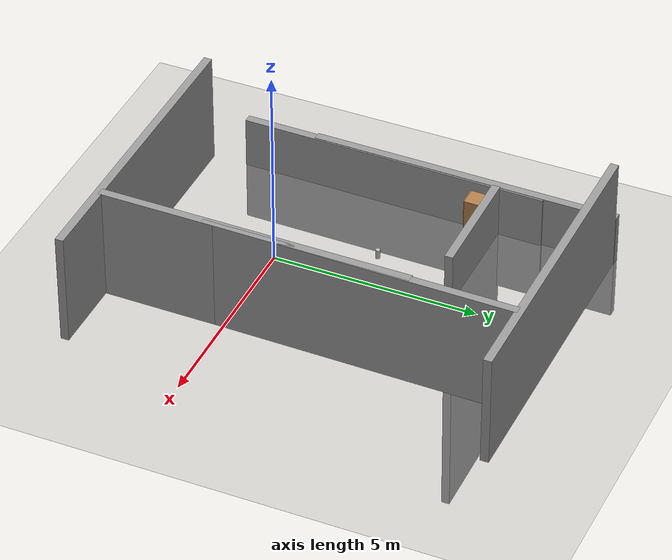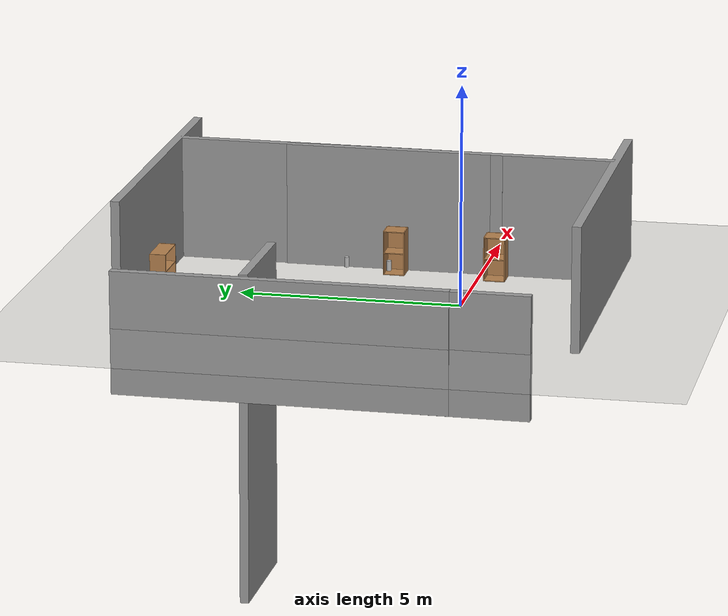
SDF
<sdf version="1.4">
 <world name="default">
  <light name="sun" type="directional">
   <pose>0 0 10 0 -0 0</pose>
   <diffuse>0.8 0.8 0.8 1</diffuse>
   <specular>0.2 0.2 0.2 1</specular>
   <attenuation>
    <range>1000</range>
    <constant>0.9</constant>
    <linear>0.01</linear>
    <quadratic>0.001</quadratic>
   </attenuation>
   <direction>0.5 0.1 -0.9</direction>
  </light>
  <scene><ambient>0.4 0.4 0.4 1</ambient><background>0.7 0.7 0.7 1</background><shadows>1</shadows></scene>
  <physics type="ode">
   <max_step_size>0.01</max_step_size>
   <real_time_factor>1</real_time_factor>
   <real_time_update_rate>100</real_time_update_rate>
   <gravity>0 0 -9.8</gravity>
  </physics>
  <model name="ground_plane_0">
   <static>1</static>
   <link name="link">
    <collision name="collision">
     <geometry><plane><normal>0 0 1</normal><size>100 100</size></plane></geometry>
     <surface><friction><ode><mu>100</mu><mu2>50</mu2></ode></friction></surface>
    </collision>
    <visual name="visual">
     <cast_shadows>0</cast_shadows>
     <geometry><plane><normal>0 0 1</normal><size>100 100</size></plane></geometry>
     <material>
      <script><uri>file://media/materials/scripts/gazebo.material</uri><name>Gazebo/Grey</name></script>
     </material>
    </visual>
    <velocity_decay><linear>0</linear><angular>0</angular></velocity_decay>
   </link>
   <pose>0.497681 0 0 0 -0 0</pose>
  </model>
  <spherical_coordinates>
   <surface_model>EARTH_WGS84</surface_model>
   <latitude_deg>0</latitude_deg>
   <longitude_deg>0</longitude_deg>
   <elevation>0</elevation>
   <heading_deg>0</heading_deg>
  </spherical_coordinates>
  <model name="grey_wall">
   <static>1</static>
   <link name="link">
    <pose>0 0 1.4 0 -0 0</pose>
    <collision name="collision"><geometry><box><size>7.5 0.2 2.8</size></box></geometry></collision>
    <visual name="visual">
     <cast_shadows>0</cast_shadows>
     <geometry><box><size>7.5 0.2 2.8</size></box></geometry>
     <material>
      <script>
       <uri>model://grey_wall/materials/scripts</uri>
       <uri>model://grey_wall/materials/textures</uri>
       <name>vrc/grey_wall</name>
      </script>
     </material>
    </visual>
    <velocity_decay><linear>0</linear><angular>0</angular></velocity_decay>
   </link>
   <pose>-0.246919 4.23073 -2.47937 0 -1.55233 0</pose>
  </model>
  <model name="grey_wall_0">
   <static>1</static>
   <link name="link">
    <pose>0 0 1.4 0 -0 0</pose>
    <collision name="collision"><geometry><box><size>7.5 0.2 2.8</size></box></geometry></collision>
    <visual name="visual">
     <cast_shadows>0</cast_shadows>
     <geometry><box><size>7.5 0.2 2.8</size></box></geometry>
     <material>
      <script>
       <uri>model://grey_wall/materials/scripts</uri>
       <uri>model://grey_wall/materials/textures</uri>
       <name>vrc/grey_wall</name>
      </script>
     </material>
    </visual>
    <velocity_decay><linear>0</linear><angular>0</angular></velocity_decay>
   </link>
   <pose>0.780552 7.05274 0 0 -0 0</pose>
  </model>
  <model name="grey_wall_1">
   <static>1</static>
   <link name="link">
    <pose>0 0 1.4 0 -0 0</pose>
    <collision name="collision"><geometry><box><size>7.5 0.2 2.8</size></box></geometry></collision>
    <visual name="visual">
     <cast_shadows>0</cast_shadows>
     <geometry><box><size>7.5 0.2 2.8</size></box></geometry>
     <material>
      <script>
       <uri>model://grey_wall/materials/scripts</uri>
       <uri>model://grey_wall/materials/textures</uri>
       <name>vrc/grey_wall</name>
      </script>
     </material>
    </visual>
    <velocity_decay><linear>0</linear><angular>0</angular></velocity_decay>
   </link>
   <pose>0.779802 -3.02841 0 0 -0 0</pose>
  </model>
  <model name="grey_wall_2">
   <static>1</static>
   <link name="link">
    <pose>0 0 1.4 0 -0 0</pose>
    <collision name="collision"><geometry><box><size>7.5 0.2 2.8</size></box></geometry></collision>
    <visual name="visual">
     <cast_shadows>0</cast_shadows>
     <geometry><box><size>7.5 0.2 2.8</size></box></geometry>
     <material>
      <script>
       <uri>model://grey_wall/materials/scripts</uri>
       <uri>model://grey_wall/materials/textures</uri>
       <name>vrc/grey_wall</name>
      </script>
     </material>
    </visual>
    <velocity_decay><linear>0</linear><angular>0</angular></velocity_decay>
   </link>
   <pose>2.65297 3.27101 0 0 0 -1.58329</pose>
  </model>
  <model name="grey_wall_3">
   <static>1</static>
   <link name="link">
    <pose>0 0 1.4 0 -0 0</pose>
    <collision name="collision"><geometry><box><size>7.5 0.2 2.8</size></box></geometry></collision>
    <visual name="visual">
     <cast_shadows>0</cast_shadows>
     <geometry><box><size>7.5 0.2 2.8</size></box></geometry>
     <material>
      <script>
       <uri>model://grey_wall/materials/scripts</uri>
       <uri>model://grey_wall/materials/textures</uri>
       <name>vrc/grey_wall</name>
      </script>
     </material>
    </visual>
    <velocity_decay><linear>0</linear><angular>0</angular></velocity_decay>
   </link>
   <pose>2.61436 0.745537 0 0 0 -1.57584</pose>
  </model>
  <model name="grey_wall_4">
   <static>1</static>
   <link name="link">
    <pose>0 0 1.4 0 -0 0</pose>
    <collision name="collision"><geometry><box><size>7.5 0.2 2.8</size></box></geometry></collision>
    <visual name="visual">
     <cast_shadows>0</cast_shadows>
     <geometry><box><size>7.5 0.2 2.8</size></box></geometry>
     <material>
      <script>
       <uri>model://grey_wall/materials/scripts</uri>
       <uri>model://grey_wall/materials/textures</uri>
       <name>vrc/grey_wall</name>
      </script>
     </material>
    </visual>
    <velocity_decay><linear>0</linear><angular>0</angular></velocity_decay>
   </link>
   <pose>-3.09121 3.41579 -1.51384 0 0 -1.57823</pose>
  </model>
  <model name="grey_wall_5">
   <static>1</static>
   <link name="link">
    <pose>0 0 1.4 0 -0 0</pose>
    <collision name="collision"><geometry><box><size>7.5 0.2 2.8</size></box></geometry></collision>
    <visual name="visual">
     <cast_shadows>0</cast_shadows>
     <geometry><box><size>7.5 0.2 2.8</size></box></geometry>
     <material>
      <script>
       <uri>model://grey_wall/materials/scripts</uri>
       <uri>model://grey_wall/materials/textures</uri>
       <name>vrc/grey_wall</name>
      </script>
     </material>
    </visual>
    <velocity_decay><linear>0</linear><angular>0</angular></velocity_decay>
   </link>
   <pose>-3.06749 1.64106 -1.52603 0 0 -1.58049</pose>
  </model>
  <model name="cabinet">
   <static>1</static>
   <link name="cabinet_bottom_plate">
    <inertial>
     <pose>0 0 -1 0 -0 0</pose>
     <inertia><ixx>2.05</ixx><ixy>0</ixy><ixz>0</ixz><iyy>2.05</iyy><iyz>0</iyz><izz>2.05</izz></inertia>
     <mass>25</mass>
    </inertial>
    <collision name="cabinet_bottom_plate_geom">
     <pose>0 0 0.01 0 -0 0</pose>
     <geometry><box><size>0.45 0.45 0.02</size></box></geometry>
    </collision>
    <visual name="cabinet_bottom_plate_geom_visual">
     <pose>0 0 0.01 0 -0 0</pose>
     <geometry><box><size>0.45 0.45 0.02</size></box></geometry>
     <material>
      <script><uri>file://media/materials/scripts/gazebo.material</uri><name>Gazebo/Wood</name></script>
     </material>
    </visual>
    <collision name="cabinet_bottom_plate_geom_cabinet_back_plate">
     <pose>0.235 0 0.51 0 -0 0</pose>
     <geometry><box><size>0.02 0.45 1.02</size></box></geometry>
    </collision>
    <visual name="cabinet_bottom_plate_geom_cabinet_back_plate_visual">
     <pose>0.235 0 0.51 0 -0 0</pose>
     <geometry><box><size>0.02 0.45 1.02</size></box></geometry>
     <material>
      <script><uri>file://media/materials/scripts/gazebo.material</uri><name>Gazebo/Wood</name></script>
     </material>
    </visual>
    <collision name="cabinet_bottom_plate_geom_cabinet_left_plate">
     <pose>0 0.235 0.51 0 -0 0</pose>
     <geometry><box><size>0.45 0.02 1.02</size></box></geometry>
    </collision>
    <visual name="cabinet_bottom_plate_geom_cabinet_left_plate_visual">
     <pose>0 0.235 0.51 0 -0 0</pose>
     <geometry><box><size>0.45 0.02 1.02</size></box></geometry>
     <material>
      <script><uri>file://media/materials/scripts/gazebo.material</uri><name>Gazebo/Wood</name></script>
     </material>
    </visual>
    <collision name="cabinet_bottom_plate_geom_cabinet_middle_plate">
     <pose>0 0 0.51 0 -0 0</pose>
     <geometry><box><size>0.45 0.45 0.02</size></box></geometry>
    </collision>
    <visual name="cabinet_bottom_plate_geom_cabinet_middle_plate_visual">
     <pose>0 0 0.51 0 -0 0</pose>
     <geometry><box><size>0.45 0.45 0.02</size></box></geometry>
     <material>
      <script><uri>file://media/materials/scripts/gazebo.material</uri><name>Gazebo/Wood</name></script>
     </material>
    </visual>
    <collision name="cabinet_bottom_plate_geom_cabinet_right_plate">
     <pose>0 -0.235 0.51 0 -0 0</pose>
     <geometry><box><size>0.45 0.02 1.02</size></box></geometry>
    </collision>
    <visual name="cabinet_bottom_plate_geom_cabinet_right_plate_visual">
     <pose>0 -0.235 0.51 0 -0 0</pose>
     <geometry><box><size>0.45 0.02 1.02</size></box></geometry>
     <material>
      <script><uri>file://media/materials/scripts/gazebo.material</uri><name>Gazebo/Wood</name></script>
     </material>
    </visual>
    <collision name="cabinet_bottom_plate_geom_cabinet_top_plate">
     <pose>0 0 1.01 0 -0 0</pose>
     <geometry><box><size>0.45 0.45 0.02</size></box></geometry>
    </collision>
    <visual name="cabinet_bottom_plate_geom_cabinet_top_plate_visual">
     <pose>0 0 1.01 0 -0 0</pose>
     <geometry><box><size>0.45 0.45 0.02</size></box></geometry>
     <material>
      <script><uri>file://media/materials/scripts/gazebo.material</uri><name>Gazebo/Wood</name></script>
     </material>
    </visual>
    <velocity_decay><linear>0</linear><angular>0</angular></velocity_decay>
   </link>
   <pose>2.25299 1.9161 0 0 -0 0</pose>
  </model>
  <model name="bookshelf_0">
   <static>1</static>
   <link name="link">
    <inertial><mass>1</mass></inertial>
    <collision name="back">
     <pose>0 0.005 0.6 0 -0 0</pose>
     <geometry><box><size>0.9 0.01 1.2</size></box></geometry>
    </collision>
    <visual name="visual1">
     <pose>0 0.005 0.6 0 -0 0</pose>
     <geometry><box><size>0.9 0.01 1.2</size></box></geometry>
     <material>
      <script><uri>file://media/materials/scripts/gazebo.material</uri><name>Gazebo/Wood</name></script>
     </material>
    </visual>
    <collision name="left_side">
     <pose>0.45 -0.195 0.6 0 -0 0</pose>
     <geometry><box><size>0.02 0.4 1.2</size></box></geometry>
    </collision>
    <visual name="visual2">
     <pose>0.45 -0.195 0.6 0 -0 0</pose>
     <geometry><box><size>0.02 0.4 1.2</size></box></geometry>
     <material>
      <script><uri>file://media/materials/scripts/gazebo.material</uri><name>Gazebo/Wood</name></script>
     </material>
    </visual>
    <collision name="right_side">
     <pose>-0.45 -0.195 0.6 0 -0 0</pose>
     <geometry><box><size>0.02 0.4 1.2</size></box></geometry>
    </collision>
    <visual name="visual3">
     <pose>-0.45 -0.195 0.6 0 -0 0</pose>
     <geometry><box><size>0.02 0.4 1.2</size></box></geometry>
     <material>
      <script><uri>file://media/materials/scripts/gazebo.material</uri><name>Gazebo/Wood</name></script>
     </material>
    </visual>
    <collision name="bottom">
     <pose>0 -0.195 0.03 0 -0 0</pose>
     <geometry><box><size>0.88 0.4 0.06</size></box></geometry>
    </collision>
    <visual name="visual4">
     <pose>0 -0.195 0.03 0 -0 0</pose>
     <geometry><box><size>0.88 0.4 0.06</size></box></geometry>
     <material>
      <script><uri>file://media/materials/scripts/gazebo.material</uri><name>Gazebo/Wood</name></script>
     </material>
    </visual>
    <collision name="top">
     <pose>0 -0.195 1.19 0 -0 0</pose>
     <geometry><box><size>0.88 0.4 0.02</size></box></geometry>
    </collision>
    <visual name="visual5">
     <pose>0 -0.195 1.19 0 -0 0</pose>
     <geometry><box><size>0.88 0.4 0.02</size></box></geometry>
     <material>
      <script><uri>file://media/materials/scripts/gazebo.material</uri><name>Gazebo/Wood</name></script>
     </material>
    </visual>
    <collision name="low_shelf">
     <pose>0 -0.195 0.43 0 -0 0</pose>
     <geometry><box><size>0.88 0.4 0.02</size></box></geometry>
    </collision>
    <visual name="visual6">
     <pose>0 -0.195 0.43 0 -0 0</pose>
     <geometry><box><size>0.88 0.4 0.02</size></box></geometry>
     <material>
      <script><uri>file://media/materials/scripts/gazebo.material</uri><name>Gazebo/Wood</name></script>
     </material>
    </visual>
    <collision name="high_shelf">
     <pose>0 -0.195 0.8 0 -0 0</pose>
     <geometry><box><size>0.88 0.4 0.02</size></box></geometry>
    </collision>
    <visual name="visual7">
     <pose>0 -0.195 0.8 0 -0 0</pose>
     <geometry><box><size>0.88 0.4 0.02</size></box></geometry>
     <material>
      <script><uri>file://media/materials/scripts/gazebo.material</uri><name>Gazebo/Wood</name></script>
     </material>
    </visual>
    <velocity_decay><linear>0</linear><angular>0</angular></velocity_decay>
   </link>
   <pose>-0.028768 6.97954 -0.279163 0 -0 0</pose>
  </model>
  <model name="cabinet_0">
   <static>1</static>
   <link name="cabinet_bottom_plate">
    <inertial>
     <pose>0 0 -1 0 -0 0</pose>
     <inertia><ixx>2.05</ixx><ixy>0</ixy><ixz>0</ixz><iyy>2.05</iyy><iyz>0</iyz><izz>2.05</izz></inertia>
     <mass>25</mass>
    </inertial>
    <collision name="cabinet_bottom_plate_geom">
     <pose>0 0 0.01 0 -0 0</pose>
     <geometry><box><size>0.45 0.45 0.02</size></box></geometry>
    </collision>
    <visual name="cabinet_bottom_plate_geom_visual">
     <pose>0 0 0.01 0 -0 0</pose>
     <geometry><box><size>0.45 0.45 0.02</size></box></geometry>
     <material>
      <script><uri>file://media/materials/scripts/gazebo.material</uri><name>Gazebo/Wood</name></script>
     </material>
    </visual>
    <collision name="cabinet_bottom_plate_geom_cabinet_back_plate">
     <pose>0.235 0 0.51 0 -0 0</pose>
     <geometry><box><size>0.02 0.45 1.02</size></box></geometry>
    </collision>
    <visual name="cabinet_bottom_plate_geom_cabinet_back_plate_visual">
     <pose>0.235 0 0.51 0 -0 0</pose>
     <geometry><box><size>0.02 0.45 1.02</size></box></geometry>
     <material>
      <script><uri>file://media/materials/scripts/gazebo.material</uri><name>Gazebo/Wood</name></script>
     </material>
    </visual>
    <collision name="cabinet_bottom_plate_geom_cabinet_left_plate">
     <pose>0 0.235 0.51 0 -0 0</pose>
     <geometry><box><size>0.45 0.02 1.02</size></box></geometry>
    </collision>
    <visual name="cabinet_bottom_plate_geom_cabinet_left_plate_visual">
     <pose>0 0.235 0.51 0 -0 0</pose>
     <geometry><box><size>0.45 0.02 1.02</size></box></geometry>
     <material>
      <script><uri>file://media/materials/scripts/gazebo.material</uri><name>Gazebo/Wood</name></script>
     </material>
    </visual>
    <collision name="cabinet_bottom_plate_geom_cabinet_middle_plate">
     <pose>0 0 0.51 0 -0 0</pose>
     <geometry><box><size>0.45 0.45 0.02</size></box></geometry>
    </collision>
    <visual name="cabinet_bottom_plate_geom_cabinet_middle_plate_visual">
     <pose>0 0 0.51 0 -0 0</pose>
     <geometry><box><size>0.45 0.45 0.02</size></box></geometry>
     <material>
      <script><uri>file://media/materials/scripts/gazebo.material</uri><name>Gazebo/Wood</name></script>
     </material>
    </visual>
    <collision name="cabinet_bottom_plate_geom_cabinet_right_plate">
     <pose>0 -0.235 0.51 0 -0 0</pose>
     <geometry><box><size>0.45 0.02 1.02</size></box></geometry>
    </collision>
    <visual name="cabinet_bottom_plate_geom_cabinet_right_plate_visual">
     <pose>0 -0.235 0.51 0 -0 0</pose>
     <geometry><box><size>0.45 0.02 1.02</size></box></geometry>
     <material>
      <script><uri>file://media/materials/scripts/gazebo.material</uri><name>Gazebo/Wood</name></script>
     </material>
    </visual>
    <collision name="cabinet_bottom_plate_geom_cabinet_top_plate">
     <pose>0 0 1.01 0 -0 0</pose>
     <geometry><box><size>0.45 0.45 0.02</size></box></geometry>
    </collision>
    <visual name="cabinet_bottom_plate_geom_cabinet_top_plate_visual">
     <pose>0 0 1.01 0 -0 0</pose>
     <geometry><box><size>0.45 0.45 0.02</size></box></geometry>
     <material>
      <script><uri>file://media/materials/scripts/gazebo.material</uri><name>Gazebo/Wood</name></script>
     </material>
    </visual>
    <velocity_decay><linear>0</linear><angular>0</angular></velocity_decay>
   </link>
   <pose>-2.73191 3.86912 0 0 -0 0</pose>
  </model>
  <model name="cabinet_1">
   <static>1</static>
   <link name="cabinet_bottom_plate">
    <inertial>
     <pose>0 0 -1 0 -0 0</pose>
     <inertia><ixx>2.05</ixx><ixy>0</ixy><ixz>0</ixz><iyy>2.05</iyy><iyz>0</iyz><izz>2.05</izz></inertia>
     <mass>25</mass>
    </inertial>
    <collision name="cabinet_bottom_plate_geom">
     <pose>0 0 0.01 0 -0 0</pose>
     <geometry><box><size>0.45 0.45 0.02</size></box></geometry>
    </collision>
    <visual name="cabinet_bottom_plate_geom_visual">
     <pose>0 0 0.01 0 -0 0</pose>
     <geometry><box><size>0.45 0.45 0.02</size></box></geometry>
     <material>
      <script><uri>file://media/materials/scripts/gazebo.material</uri><name>Gazebo/Wood</name></script>
     </material>
    </visual>
    <collision name="cabinet_bottom_plate_geom_cabinet_back_plate">
     <pose>0.235 0 0.51 0 -0 0</pose>
     <geometry><box><size>0.02 0.45 1.02</size></box></geometry>
    </collision>
    <visual name="cabinet_bottom_plate_geom_cabinet_back_plate_visual">
     <pose>0.235 0 0.51 0 -0 0</pose>
     <geometry><box><size>0.02 0.45 1.02</size></box></geometry>
     <material>
      <script><uri>file://media/materials/scripts/gazebo.material</uri><name>Gazebo/Wood</name></script>
     </material>
    </visual>
    <collision name="cabinet_bottom_plate_geom_cabinet_left_plate">
     <pose>0 0.235 0.51 0 -0 0</pose>
     <geometry><box><size>0.45 0.02 1.02</size></box></geometry>
    </collision>
    <visual name="cabinet_bottom_plate_geom_cabinet_left_plate_visual">
     <pose>0 0.235 0.51 0 -0 0</pose>
     <geometry><box><size>0.45 0.02 1.02</size></box></geometry>
     <material>
      <script><uri>file://media/materials/scripts/gazebo.material</uri><name>Gazebo/Wood</name></script>
     </material>
    </visual>
    <collision name="cabinet_bottom_plate_geom_cabinet_middle_plate">
     <pose>0 0 0.51 0 -0 0</pose>
     <geometry><box><size>0.45 0.45 0.02</size></box></geometry>
    </collision>
    <visual name="cabinet_bottom_plate_geom_cabinet_middle_plate_visual">
     <pose>0 0 0.51 0 -0 0</pose>
     <geometry><box><size>0.45 0.45 0.02</size></box></geometry>
     <material>
      <script><uri>file://media/materials/scripts/gazebo.material</uri><name>Gazebo/Wood</name></script>
     </material>
    </visual>
    <collision name="cabinet_bottom_plate_geom_cabinet_right_plate">
     <pose>0 -0.235 0.51 0 -0 0</pose>
     <geometry><box><size>0.45 0.02 1.02</size></box></geometry>
    </collision>
    <visual name="cabinet_bottom_plate_geom_cabinet_right_plate_visual">
     <pose>0 -0.235 0.51 0 -0 0</pose>
     <geometry><box><size>0.45 0.02 1.02</size></box></geometry>
     <material>
      <script><uri>file://media/materials/scripts/gazebo.material</uri><name>Gazebo/Wood</name></script>
     </material>
    </visual>
    <collision name="cabinet_bottom_plate_geom_cabinet_top_plate">
     <pose>0 0 1.01 0 -0 0</pose>
     <geometry><box><size>0.45 0.45 0.02</size></box></geometry>
    </collision>
    <visual name="cabinet_bottom_plate_geom_cabinet_top_plate_visual">
     <pose>0 0 1.01 0 -0 0</pose>
     <geometry><box><size>0.45 0.45 0.02</size></box></geometry>
     <material>
      <script><uri>file://media/materials/scripts/gazebo.material</uri><name>Gazebo/Wood</name></script>
     </material>
    </visual>
    <velocity_decay><linear>0</linear><angular>0</angular></velocity_decay>
   </link>
   <pose>2.20497 -0.392451 0 0 -0 0</pose>
  </model>
  <model name="beer_0">
   <link name="link">
    <pose>0 0 0.115 0 -0 0</pose>
    <inertial>
     <mass>0.39</mass>
     <inertia><ixx>0.00058</ixx><ixy>0</ixy><ixz>0</ixz><iyy>0.00058</iyy><iyz>0</iyz><izz>0.00019</izz></inertia>
    </inertial>
    <collision name="collision">
     <geometry><cylinder><radius>0.055</radius><length>0.23</length></cylinder></geometry>
    </collision>
    <visual name="visual">
     <geometry><cylinder><radius>0.055</radius><length>0.23</length></cylinder></geometry>
     <material>
      <script>
       <uri>model://beer/materials/scripts</uri>
       <uri>model://beer/materials/textures</uri>
       <name>Beer/Diffuse</name>
      </script>
     </material>
    </visual>
    <velocity_decay><linear>0</linear><angular>0</angular></velocity_decay>
   </link>
   <pose>-0.087299 2.54906 0.774914 0.000453 0.001558 0.115048</pose>
   <static>0</static>
  </model>
  <model name="beer_2">
   <link name="link">
    <pose>0 0 0.115 0 -0 0</pose>
    <inertial>
     <mass>0.39</mass>
     <inertia><ixx>0.00058</ixx><ixy>0</ixy><ixz>0</ixz><iyy>0.00058</iyy><iyz>0</iyz><izz>0.00019</izz></inertia>
    </inertial>
    <collision name="collision">
     <geometry><cylinder><radius>0.055</radius><length>0.23</length></cylinder></geometry>
    </collision>
    <visual name="visual">
     <geometry><cylinder><radius>0.055</radius><length>0.23</length></cylinder></geometry>
     <material>
      <script>
       <uri>model://beer/materials/scripts</uri>
       <uri>model://beer/materials/textures</uri>
       <name>Beer/Diffuse</name>
      </script>
     </material>
    </visual>
    <velocity_decay><linear>0</linear><angular>0</angular></velocity_decay>
   </link>
   <pose>2.34389 2.08604 0.019152 -0.000587 -3e-05 -1.17446</pose>
   <static>0</static>
  </model>
  <model name="beer_3">
   <link name="link">
    <pose>0 0 0.115 0 -0 0</pose>
    <inertial>
     <mass>0.39</mass>
     <inertia><ixx>0.00058</ixx><ixy>0</ixy><ixz>0</ixz><iyy>0.00058</iyy><iyz>0</iyz><izz>0.00019</izz></inertia>
    </inertial>
    <collision name="collision">
     <geometry><cylinder><radius>0.055</radius><length>0.23</length></cylinder></geometry>
    </collision>
    <visual name="visual">
     <geometry><cylinder><radius>0.055</radius><length>0.23</length></cylinder></geometry>
     <material>
      <script>
       <uri>model://beer/materials/scripts</uri>
       <uri>model://beer/materials/textures</uri>
       <name>Beer/Diffuse</name>
      </script>
     </material>
    </visual>
    <velocity_decay><linear>0</linear><angular>0</angular></velocity_decay>
   </link>
   <pose>-0.120168 6.89774 0.530909 -0.000477 0.001213 -1.29544</pose>
   <static>0</static>
  </model>
 </world>
</sdf>
